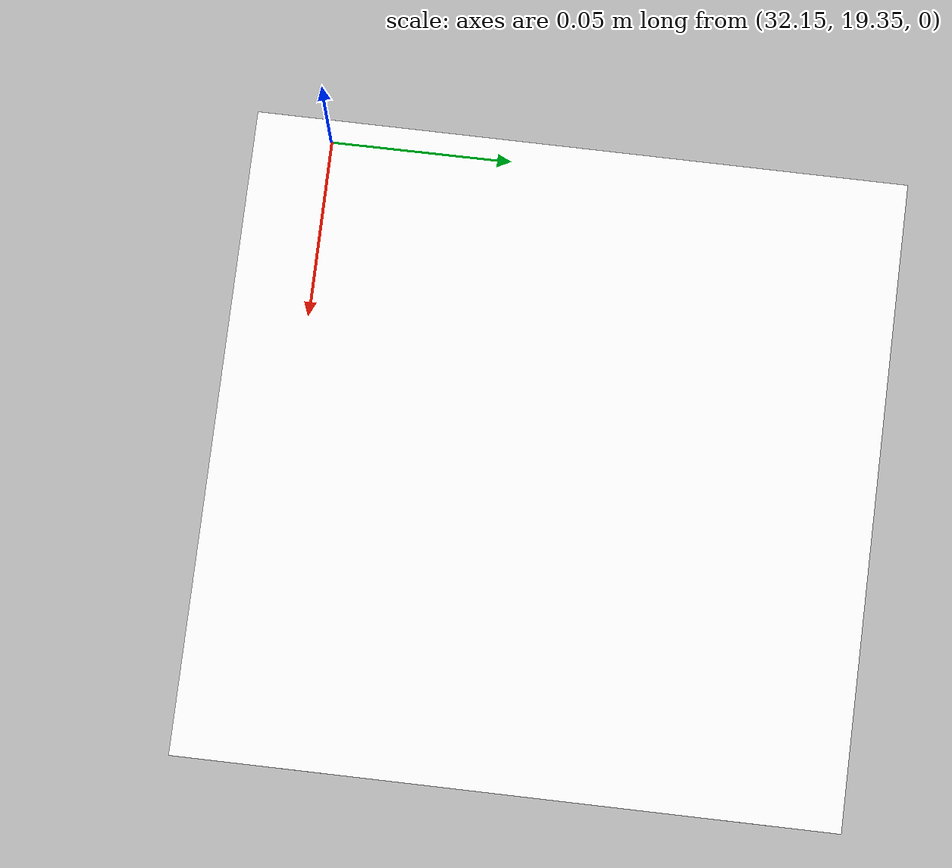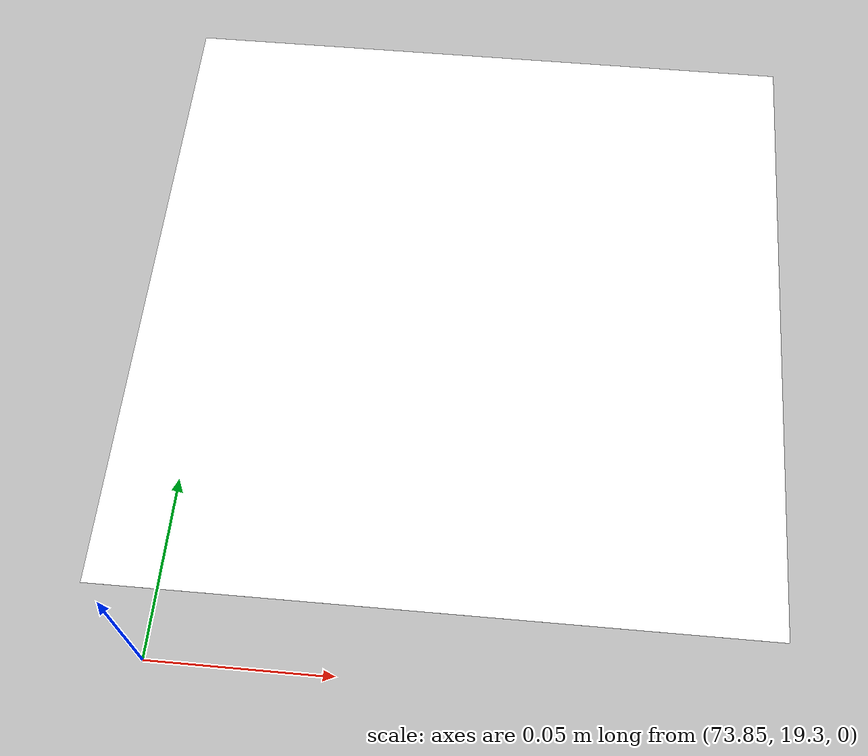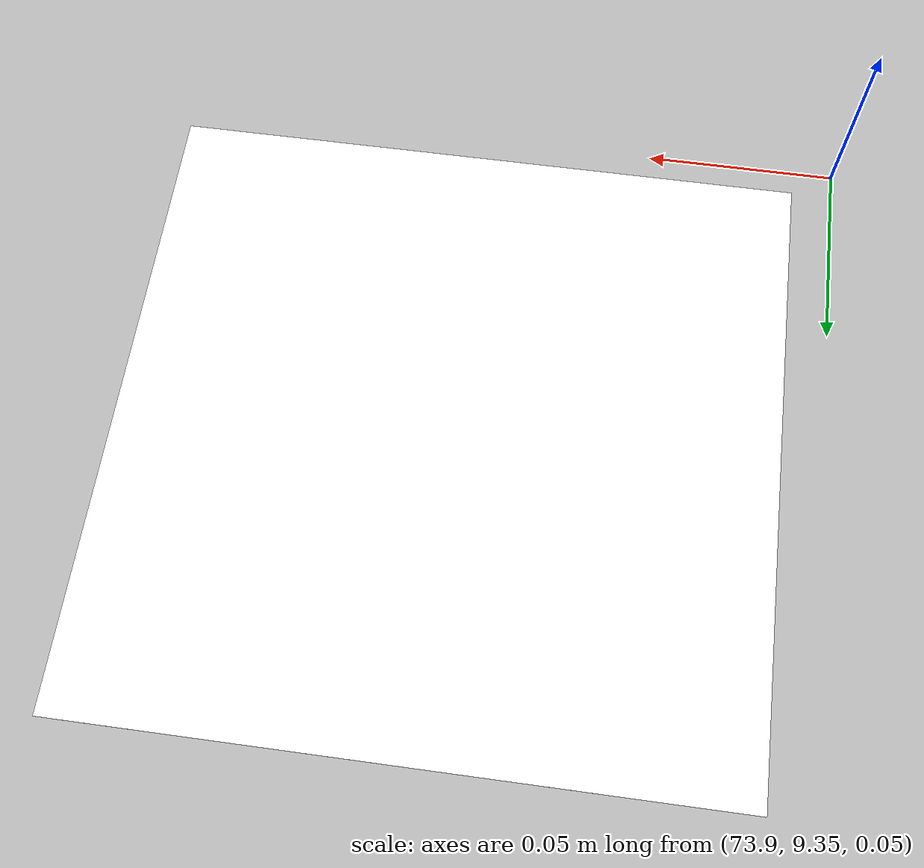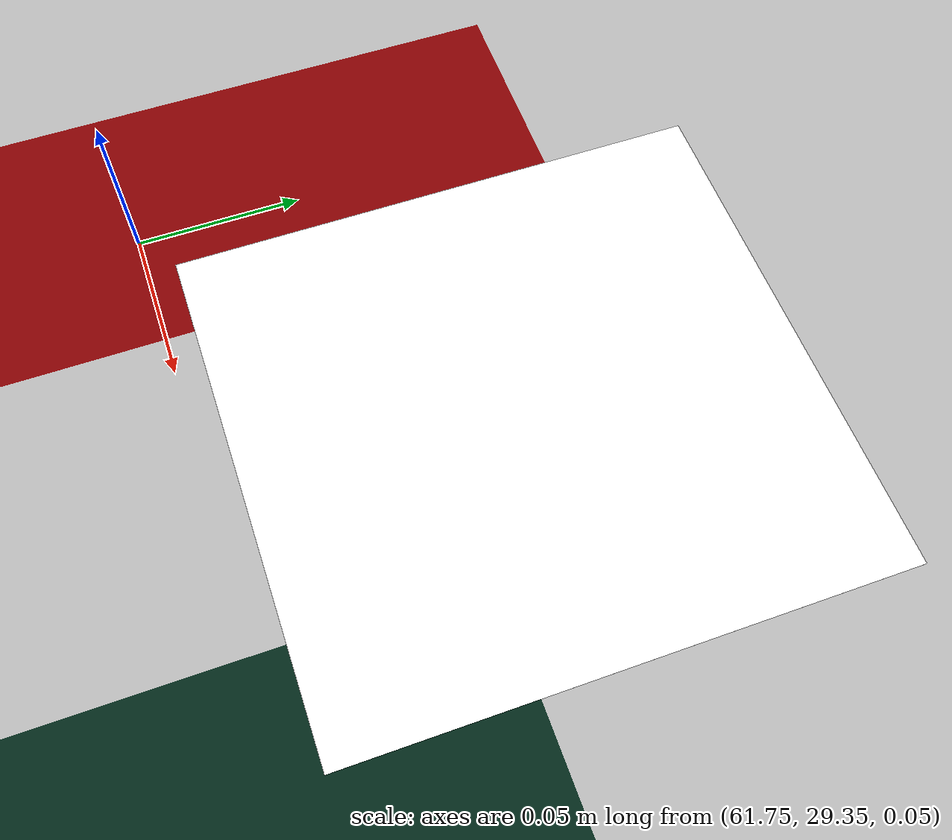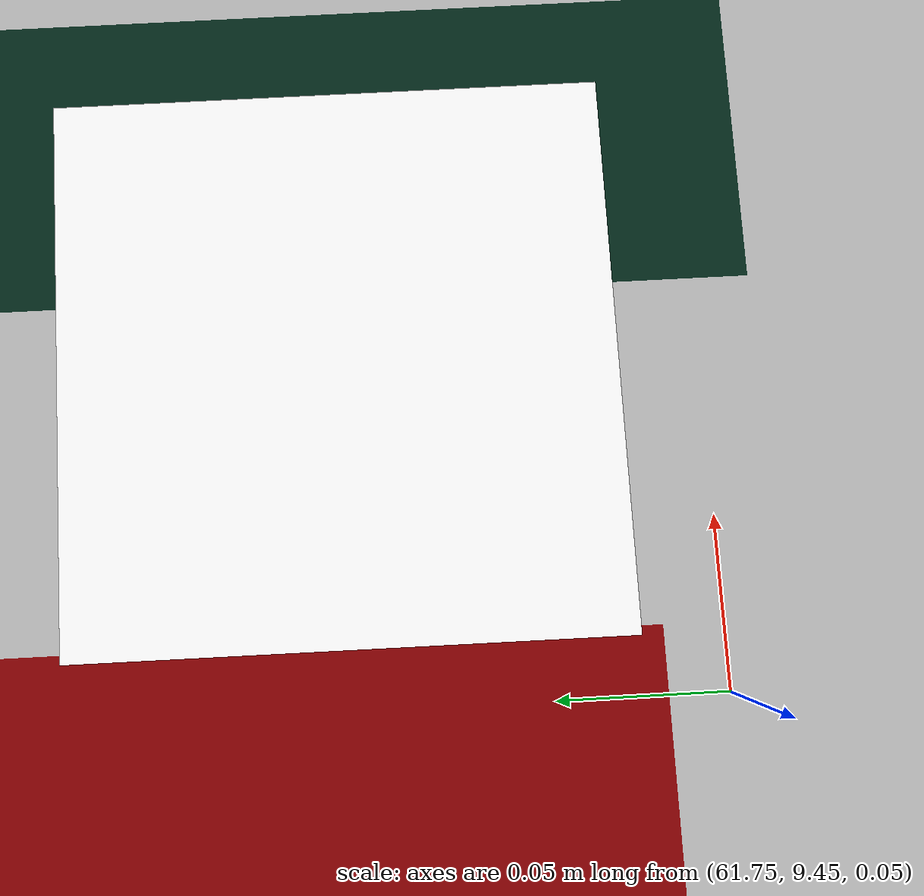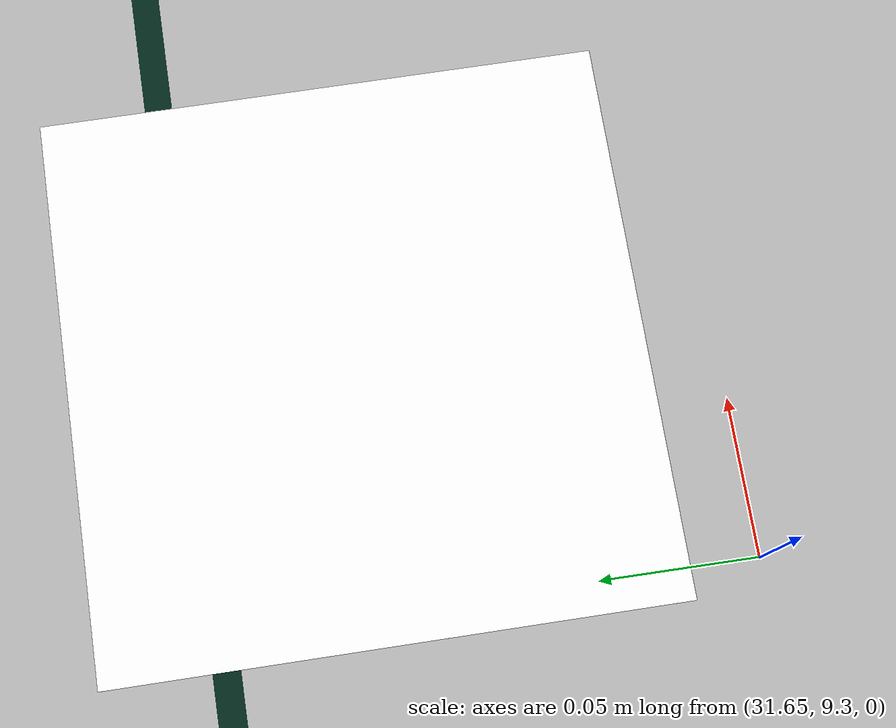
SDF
<sdf version="1.7">
 <world name="factory_ground">
  <gravity>0 0 -9.8</gravity>
  <physics name="default_physics" default="0" type="ode">
   <max_step_size>0.001</max_step_size>
   <real_time_factor>1</real_time_factor>
   <real_time_update_rate>1000</real_time_update_rate>
  </physics>
  <model name="ground_plane">
   <static>1</static>
   <link name="link">
    <collision name="collision">
     <geometry><plane><normal>0 0 1</normal><size>100 100</size></plane></geometry>
     <surface>
      <contact><collide_bitmask>65535</collide_bitmask></contact>
      <friction><ode><mu>100</mu><mu2>50</mu2></ode></friction>
     </surface>
    </collision>
    <visual name="visual">
     <cast_shadows>0</cast_shadows>
     <geometry><plane><normal>0 0 1</normal><size>100 100</size></plane></geometry>
     <material>
      <script><uri>file://media/materials/scripts/gazebo.material</uri><name>Gazebo/Grey</name></script>
     </material>
    </visual>
   </link>
  </model>
  <light name="sun" type="directional">
   <pose>0 0 10 0 -0 0</pose>
   <diffuse>0.8 0.8 0.8 1</diffuse>
   <specular>0.2 0.2 0.2 1</specular>
   <attenuation>
    <range>1000</range>
    <constant>0.9</constant>
    <linear>0.01</linear>
    <quadratic>0.001</quadratic>
   </attenuation>
   <direction>-0.5 0.1 -0.9</direction>
   <spot><inner_angle>0</inner_angle><outer_angle>0</outer_angle><falloff>0</falloff></spot>
  </light>
  <magnetic_field>6e-06 2.3e-05 -4.2e-05</magnetic_field>
  <atmosphere type="adiabatic"/>
  <scene><ambient>0.4 0.4 0.4 1</ambient><background>0.7 0.7 0.7 1</background><shadows>1</shadows></scene>
  <spherical_coordinates>
   <surface_model>EARTH_WGS84</surface_model>
   <latitude_deg>0</latitude_deg>
   <longitude_deg>0</longitude_deg>
   <elevation>0</elevation>
   <heading_deg>0</heading_deg>
  </spherical_coordinates>
  <model name="automobile_factory_Ground">
   <static>0</static>
   <pose>-0.070606 -0.580731 -0 0.000523 -8.6e-05 -0</pose>
   <link name="link">
    <inertial>
     <mass>1000</mass>
     <inertia>
      <ixx>1.20008e+06</ixx>
      <ixy>0</ixy>
      <ixz>0</ixz>
      <iyy>8.33342e+06</iyy>
      <iyz>0</iyz>
      <izz>2.03333e+06</izz>
     </inertia>
    </inertial>
    <collision name="colision">
     <geometry>
      <mesh>
       <uri>model://automobile_factory_Ground/meshes/automobile_factory_Ground.dae</uri>
       <scale>1 1 1</scale>
      </mesh>
     </geometry>
     <surface>
      <friction><ode><mu>100</mu><mu2>50</mu2><fdir1>0 0 0</fdir1><slip1>0</slip1><slip2>0</slip2></ode></friction>
     </surface>
    </collision>
    <visual name="visual">
     <geometry>
      <mesh><uri>model://automobile_factory_Ground/meshes/automobile_factory_Ground.dae</uri></mesh>
     </geometry>
     <meta><layer>1</layer></meta>
    </visual>
   </link>
   <static>1</static>
  </model>
  <model name="marker_1">
   <link name="marker">
    <visual name="visual">
     <geometry><box><size>0.1778 0.1778 1e-05</size></box></geometry>
     <material>
      <script>
       <uri>model://marker_1/materials/scripts</uri>
       <uri>model://marker_1/materials/textures</uri>
       <name>ArucoVisualMarker1/Marker</name>
      </script>
      <ambient>1 1 1 1</ambient>
      <diffuse>1 1 1 1</diffuse>
      <specular>0 0 0 1</specular>
      <emissive>1 1 1 0</emissive>
      <shader type="vertex"><normal_map>__default__</normal_map></shader>
     </material>
    </visual>
    <collision name="collision"><geometry><box><size>0.1 0.1 1e-05</size></box></geometry></collision>
   </link>
   <link name="marker_pad">
    <pose relative_to="marker">0 0 -1e-05 0 -0 0</pose>
    <visual name="visual">
     <geometry><box><size>0.1 0.1 1e-05</size></box></geometry>
     <material>
      <lighting>1</lighting>
      <script><uri>file://media/materials/scripts/gazebo.material</uri><name>Gazebo/White</name></script>
      <ambient>0.3 0.3 0.3 1</ambient>
      <diffuse>0.7 0.7 0.7 1</diffuse>
      <specular>0.01 0.01 0.01 1</specular>
      <emissive>1 1 1 0</emissive>
      <shader type="vertex"><normal_map>__default__</normal_map></shader>
     </material>
    </visual>
    <collision name="collision"><geometry><box><size>0.1 0.1 1e-05</size></box></geometry></collision>
   </link>
   <joint name="marker_JOINT_marker_pad" type="revolute">
    <parent>marker</parent>
    <child>marker_pad</child>
    <axis>
     <xyz>0 0 1</xyz>
     <limit><upper>0</upper><lower>0</lower></limit>
     <dynamics><spring_reference>0</spring_reference><spring_stiffness>0</spring_stiffness></dynamics>
    </axis>
   </joint>
   <static>1</static>
   <pose>31.7283 9.41298 0.012563 0 -0 0</pose>
  </model>
  <model name="marker_2">
   <link name="marker">
    <visual name="visual">
     <geometry><box><size>0.1778 0.1778 1e-05</size></box></geometry>
     <material>
      <script>
       <uri>model://marker_2/materials/scripts</uri>
       <uri>model://marker_2/materials/textures</uri>
       <name>ArucoVisualMarker2/Marker</name>
      </script>
      <ambient>1 1 1 1</ambient>
      <diffuse>1 1 1 1</diffuse>
      <specular>0 0 0 1</specular>
      <emissive>1 1 1 0</emissive>
      <shader type="vertex"><normal_map>__default__</normal_map></shader>
     </material>
    </visual>
    <collision name="collision"><geometry><box><size>0.1 0.1 1e-05</size></box></geometry></collision>
   </link>
   <link name="marker_pad">
    <pose relative_to="marker">0 0 -1e-05 0 -0 0</pose>
    <visual name="visual">
     <geometry><box><size>0.1 0.1 1e-05</size></box></geometry>
     <material>
      <lighting>1</lighting>
      <script><uri>file://media/materials/scripts/gazebo.material</uri><name>Gazebo/White</name></script>
      <ambient>0.3 0.3 0.3 1</ambient>
      <diffuse>0.7 0.7 0.7 1</diffuse>
      <specular>0.01 0.01 0.01 1</specular>
      <emissive>1 1 1 0</emissive>
      <shader type="vertex"><normal_map>__default__</normal_map></shader>
     </material>
    </visual>
    <collision name="collision"><geometry><box><size>0.1 0.1 1e-05</size></box></geometry></collision>
   </link>
   <joint name="marker_JOINT_marker_pad" type="revolute">
    <parent>marker</parent>
    <child>marker_pad</child>
    <axis>
     <xyz>0 0 1</xyz>
     <limit><upper>0</upper><lower>0</lower></limit>
     <dynamics><spring_reference>0</spring_reference><spring_stiffness>0</spring_stiffness></dynamics>
    </axis>
   </joint>
   <static>1</static>
   <pose>32.238 19.4194 0.018031 0 -0 0</pose>
  </model>
  <model name="marker_3">
   <link name="marker">
    <visual name="visual">
     <geometry><box><size>0.1778 0.1778 1e-05</size></box></geometry>
     <material>
      <script>
       <uri>model://marker_3/materials/scripts</uri>
       <uri>model://marker_3/materials/textures</uri>
       <name>ArucoVisualMarker3/Marker</name>
      </script>
      <ambient>1 1 1 1</ambient>
      <diffuse>1 1 1 1</diffuse>
      <specular>0 0 0 1</specular>
      <emissive>1 1 1 0</emissive>
      <shader type="vertex"><normal_map>__default__</normal_map></shader>
     </material>
    </visual>
    <collision name="collision"><geometry><box><size>0.1 0.1 1e-05</size></box></geometry></collision>
   </link>
   <link name="marker_pad">
    <pose relative_to="marker">0 0 -1e-05 0 -0 0</pose>
    <visual name="visual">
     <geometry><box><size>0.1 0.1 1e-05</size></box></geometry>
     <material>
      <lighting>1</lighting>
      <script><uri>file://media/materials/scripts/gazebo.material</uri><name>Gazebo/White</name></script>
      <ambient>0.3 0.3 0.3 1</ambient>
      <diffuse>0.7 0.7 0.7 1</diffuse>
      <specular>0.01 0.01 0.01 1</specular>
      <emissive>1 1 1 0</emissive>
      <shader type="vertex"><normal_map>__default__</normal_map></shader>
     </material>
    </visual>
    <collision name="collision"><geometry><box><size>0.1 0.1 1e-05</size></box></geometry></collision>
   </link>
   <joint name="marker_JOINT_marker_pad" type="revolute">
    <parent>marker</parent>
    <child>marker_pad</child>
    <axis>
     <xyz>0 0 1</xyz>
     <limit><upper>0</upper><lower>0</lower></limit>
     <dynamics><spring_reference>0</spring_reference><spring_stiffness>0</spring_stiffness></dynamics>
    </axis>
   </joint>
   <static>1</static>
   <pose>50.6126 9.39638 0.031715 0 -0 0</pose>
  </model>
  <model name="marker_4">
   <link name="marker">
    <visual name="visual">
     <geometry><box><size>0.1778 0.1778 1e-05</size></box></geometry>
     <material>
      <script>
       <uri>model://marker_4/materials/scripts</uri>
       <uri>model://marker_4/materials/textures</uri>
       <name>ArucoVisualMarker4/Marker</name>
      </script>
      <ambient>1 1 1 1</ambient>
      <diffuse>1 1 1 1</diffuse>
      <specular>0 0 0 1</specular>
      <emissive>1 1 1 0</emissive>
      <shader type="vertex"><normal_map>__default__</normal_map></shader>
     </material>
    </visual>
    <collision name="collision"><geometry><box><size>0.1 0.1 1e-05</size></box></geometry></collision>
   </link>
   <link name="marker_pad">
    <pose relative_to="marker">0 0 -1e-05 0 -0 0</pose>
    <visual name="visual">
     <geometry><box><size>0.1 0.1 1e-05</size></box></geometry>
     <material>
      <lighting>1</lighting>
      <script><uri>file://media/materials/scripts/gazebo.material</uri><name>Gazebo/White</name></script>
      <ambient>0.3 0.3 0.3 1</ambient>
      <diffuse>0.7 0.7 0.7 1</diffuse>
      <specular>0.01 0.01 0.01 1</specular>
      <emissive>1 1 1 0</emissive>
      <shader type="vertex"><normal_map>__default__</normal_map></shader>
     </material>
    </visual>
    <collision name="collision"><geometry><box><size>0.1 0.1 1e-05</size></box></geometry></collision>
   </link>
   <joint name="marker_JOINT_marker_pad" type="revolute">
    <parent>marker</parent>
    <child>marker_pad</child>
    <axis>
     <xyz>0 0 1</xyz>
     <limit><upper>0</upper><lower>0</lower></limit>
     <dynamics><spring_reference>0</spring_reference><spring_stiffness>0</spring_stiffness></dynamics>
    </axis>
   </joint>
   <static>1</static>
   <pose>51.1195 19.4767 0.016567 0 -0 0</pose>
  </model>
  <model name="marker_6">
   <link name="marker">
    <visual name="visual">
     <geometry><box><size>0.1778 0.1778 1e-05</size></box></geometry>
     <material>
      <script>
       <uri>model://marker_6/materials/scripts</uri>
       <uri>model://marker_6/materials/textures</uri>
       <name>ArucoVisualMarker6/Marker</name>
      </script>
      <ambient>1 1 1 1</ambient>
      <diffuse>1 1 1 1</diffuse>
      <specular>0 0 0 1</specular>
      <emissive>1 1 1 0</emissive>
      <shader type="vertex"><normal_map>__default__</normal_map></shader>
     </material>
    </visual>
    <collision name="collision"><geometry><box><size>0.1 0.1 1e-05</size></box></geometry></collision>
   </link>
   <link name="marker_pad">
    <pose relative_to="marker">0 0 -1e-05 0 -0 0</pose>
    <visual name="visual">
     <geometry><box><size>0.1 0.1 1e-05</size></box></geometry>
     <material>
      <lighting>1</lighting>
      <script><uri>file://media/materials/scripts/gazebo.material</uri><name>Gazebo/White</name></script>
      <ambient>0.3 0.3 0.3 1</ambient>
      <diffuse>0.7 0.7 0.7 1</diffuse>
      <specular>0.01 0.01 0.01 1</specular>
      <emissive>1 1 1 0</emissive>
      <shader type="vertex"><normal_map>__default__</normal_map></shader>
     </material>
    </visual>
    <collision name="collision"><geometry><box><size>0.1 0.1 1e-05</size></box></geometry></collision>
   </link>
   <joint name="marker_JOINT_marker_pad" type="revolute">
    <parent>marker</parent>
    <child>marker_pad</child>
    <axis>
     <xyz>0 0 1</xyz>
     <limit><upper>0</upper><lower>0</lower></limit>
     <dynamics><spring_reference>0</spring_reference><spring_stiffness>0</spring_stiffness></dynamics>
    </axis>
   </joint>
   <static>1</static>
   <pose>61.8541 9.55774 0.028296 0 -0 0</pose>
  </model>
  <model name="marker_7">
   <link name="marker">
    <visual name="visual">
     <geometry><box><size>0.1778 0.1778 1e-05</size></box></geometry>
     <material>
      <script>
       <uri>model://marker_7/materials/scripts</uri>
       <uri>model://marker_7/materials/textures</uri>
       <name>ArucoVisualMarker7/Marker</name>
      </script>
      <ambient>1 1 1 1</ambient>
      <diffuse>1 1 1 1</diffuse>
      <specular>0 0 0 1</specular>
      <emissive>1 1 1 0</emissive>
      <shader type="vertex"><normal_map>__default__</normal_map></shader>
     </material>
    </visual>
    <collision name="collision"><geometry><box><size>0.1 0.1 1e-05</size></box></geometry></collision>
   </link>
   <link name="marker_pad">
    <pose relative_to="marker">0 0 -1e-05 0 -0 0</pose>
    <visual name="visual">
     <geometry><box><size>0.1 0.1 1e-05</size></box></geometry>
     <material>
      <lighting>1</lighting>
      <script><uri>file://media/materials/scripts/gazebo.material</uri><name>Gazebo/White</name></script>
      <ambient>0.3 0.3 0.3 1</ambient>
      <diffuse>0.7 0.7 0.7 1</diffuse>
      <specular>0.01 0.01 0.01 1</specular>
      <emissive>1 1 1 0</emissive>
      <shader type="vertex"><normal_map>__default__</normal_map></shader>
     </material>
    </visual>
    <collision name="collision"><geometry><box><size>0.1 0.1 1e-05</size></box></geometry></collision>
   </link>
   <joint name="marker_JOINT_marker_pad" type="revolute">
    <parent>marker</parent>
    <child>marker_pad</child>
    <axis>
     <xyz>0 0 1</xyz>
     <limit><upper>0</upper><lower>0</lower></limit>
     <dynamics><spring_reference>0</spring_reference><spring_stiffness>0</spring_stiffness></dynamics>
    </axis>
   </joint>
   <static>1</static>
   <pose>61.841 19.4853 0.020192 0 -0 0</pose>
  </model>
  <model name="marker_5">
   <link name="marker">
    <visual name="visual">
     <geometry><box><size>0.1778 0.1778 1e-05</size></box></geometry>
     <material>
      <script>
       <uri>model://marker_5/materials/scripts</uri>
       <uri>model://marker_5/materials/textures</uri>
       <name>ArucoVisualMarker5/Marker</name>
      </script>
      <ambient>1 1 1 1</ambient>
      <diffuse>1 1 1 1</diffuse>
      <specular>0 0 0 1</specular>
      <emissive>1 1 1 0</emissive>
      <shader type="vertex"><normal_map>__default__</normal_map></shader>
     </material>
    </visual>
    <collision name="collision"><geometry><box><size>0.1 0.1 1e-05</size></box></geometry></collision>
   </link>
   <link name="marker_pad">
    <pose relative_to="marker">0 0 -1e-05 0 -0 0</pose>
    <visual name="visual">
     <geometry><box><size>0.1 0.1 1e-05</size></box></geometry>
     <material>
      <lighting>1</lighting>
      <script><uri>file://media/materials/scripts/gazebo.material</uri><name>Gazebo/White</name></script>
      <ambient>0.3 0.3 0.3 1</ambient>
      <diffuse>0.7 0.7 0.7 1</diffuse>
      <specular>0.01 0.01 0.01 1</specular>
      <emissive>1 1 1 0</emissive>
      <shader type="vertex"><normal_map>__default__</normal_map></shader>
     </material>
    </visual>
    <collision name="collision"><geometry><box><size>0.1 0.1 1e-05</size></box></geometry></collision>
   </link>
   <joint name="marker_JOINT_marker_pad" type="revolute">
    <parent>marker</parent>
    <child>marker_pad</child>
    <axis>
     <xyz>0 0 1</xyz>
     <limit><upper>0</upper><lower>0</lower></limit>
     <dynamics><spring_reference>0</spring_reference><spring_stiffness>0</spring_stiffness></dynamics>
    </axis>
   </joint>
   <static>1</static>
   <pose>50.3968 29.4438 0.031081 0 -0 0</pose>
  </model>
  <model name="marker_8">
   <link name="marker">
    <visual name="visual">
     <geometry><box><size>0.1778 0.1778 1e-05</size></box></geometry>
     <material>
      <script>
       <uri>model://marker_8/materials/scripts</uri>
       <uri>model://marker_8/materials/textures</uri>
       <name>ArucoVisualMarker8/Marker</name>
      </script>
      <ambient>1 1 1 1</ambient>
      <diffuse>1 1 1 1</diffuse>
      <specular>0 0 0 1</specular>
      <emissive>1 1 1 0</emissive>
      <shader type="vertex"><normal_map>__default__</normal_map></shader>
     </material>
    </visual>
    <collision name="collision"><geometry><box><size>0.1 0.1 1e-05</size></box></geometry></collision>
   </link>
   <link name="marker_pad">
    <pose relative_to="marker">0 0 -1e-05 0 -0 0</pose>
    <visual name="visual">
     <geometry><box><size>0.1 0.1 1e-05</size></box></geometry>
     <material>
      <lighting>1</lighting>
      <script><uri>file://media/materials/scripts/gazebo.material</uri><name>Gazebo/White</name></script>
      <ambient>0.3 0.3 0.3 1</ambient>
      <diffuse>0.7 0.7 0.7 1</diffuse>
      <specular>0.01 0.01 0.01 1</specular>
      <emissive>1 1 1 0</emissive>
      <shader type="vertex"><normal_map>__default__</normal_map></shader>
     </material>
    </visual>
    <collision name="collision"><geometry><box><size>0.1 0.1 1e-05</size></box></geometry></collision>
   </link>
   <joint name="marker_JOINT_marker_pad" type="revolute">
    <parent>marker</parent>
    <child>marker_pad</child>
    <axis>
     <xyz>0 0 1</xyz>
     <limit><upper>0</upper><lower>0</lower></limit>
     <dynamics><spring_reference>0</spring_reference><spring_stiffness>0</spring_stiffness></dynamics>
    </axis>
   </joint>
   <static>1</static>
   <pose>61.8315 29.4468 0.026609 0 -0 0</pose>
  </model>
  <model name="marker_11">
   <link name="marker">
    <visual name="visual">
     <geometry><box><size>0.1778 0.1778 1e-05</size></box></geometry>
     <material>
      <script>
       <uri>model://marker_11/materials/scripts</uri>
       <uri>model://marker_11/materials/textures</uri>
       <name>ArucoVisualMarker11/Marker</name>
      </script>
      <ambient>1 1 1 1</ambient>
      <diffuse>1 1 1 1</diffuse>
      <specular>0 0 0 1</specular>
      <emissive>1 1 1 0</emissive>
      <shader type="vertex"><normal_map>__default__</normal_map></shader>
     </material>
    </visual>
    <collision name="collision"><geometry><box><size>0.1 0.1 1e-05</size></box></geometry></collision>
   </link>
   <link name="marker_pad">
    <pose relative_to="marker">0 0 -1e-05 0 -0 0</pose>
    <visual name="visual">
     <geometry><box><size>0.1 0.1 1e-05</size></box></geometry>
     <material>
      <lighting>1</lighting>
      <script><uri>file://media/materials/scripts/gazebo.material</uri><name>Gazebo/White</name></script>
      <ambient>0.3 0.3 0.3 1</ambient>
      <diffuse>0.7 0.7 0.7 1</diffuse>
      <specular>0.01 0.01 0.01 1</specular>
      <emissive>1 1 1 0</emissive>
      <shader type="vertex"><normal_map>__default__</normal_map></shader>
     </material>
    </visual>
    <collision name="collision"><geometry><box><size>0.1 0.1 1e-05</size></box></geometry></collision>
   </link>
   <joint name="marker_JOINT_marker_pad" type="revolute">
    <parent>marker</parent>
    <child>marker_pad</child>
    <axis>
     <xyz>0 0 1</xyz>
     <limit><upper>0</upper><lower>0</lower></limit>
     <dynamics><spring_reference>0</spring_reference><spring_stiffness>0</spring_stiffness></dynamics>
    </axis>
   </joint>
   <static>1</static>
   <pose>74.0416 29.4043 0.024796 0 -0 0</pose>
  </model>
  <model name="marker_10">
   <link name="marker">
    <visual name="visual">
     <geometry><box><size>0.1778 0.1778 1e-05</size></box></geometry>
     <material>
      <script>
       <uri>model://marker_10/materials/scripts</uri>
       <uri>model://marker_10/materials/textures</uri>
       <name>ArucoVisualMarker10/Marker</name>
      </script>
      <ambient>1 1 1 1</ambient>
      <diffuse>1 1 1 1</diffuse>
      <specular>0 0 0 1</specular>
      <emissive>1 1 1 0</emissive>
      <shader type="vertex"><normal_map>__default__</normal_map></shader>
     </material>
    </visual>
    <collision name="collision"><geometry><box><size>0.1 0.1 1e-05</size></box></geometry></collision>
   </link>
   <link name="marker_pad">
    <pose relative_to="marker">0 0 -1e-05 0 -0 0</pose>
    <visual name="visual">
     <geometry><box><size>0.1 0.1 1e-05</size></box></geometry>
     <material>
      <lighting>1</lighting>
      <script><uri>file://media/materials/scripts/gazebo.material</uri><name>Gazebo/White</name></script>
      <ambient>0.3 0.3 0.3 1</ambient>
      <diffuse>0.7 0.7 0.7 1</diffuse>
      <specular>0.01 0.01 0.01 1</specular>
      <emissive>1 1 1 0</emissive>
      <shader type="vertex"><normal_map>__default__</normal_map></shader>
     </material>
    </visual>
    <collision name="collision"><geometry><box><size>0.1 0.1 1e-05</size></box></geometry></collision>
   </link>
   <joint name="marker_JOINT_marker_pad" type="revolute">
    <parent>marker</parent>
    <child>marker_pad</child>
    <axis>
     <xyz>0 0 1</xyz>
     <limit><upper>0</upper><lower>0</lower></limit>
     <dynamics><spring_reference>0</spring_reference><spring_stiffness>0</spring_stiffness></dynamics>
    </axis>
   </joint>
   <static>1</static>
   <pose>73.9236 19.4027 0.017449 0 -0 0</pose>
  </model>
  <model name="marker_9">
   <link name="marker">
    <visual name="visual">
     <geometry><box><size>0.1778 0.1778 1e-05</size></box></geometry>
     <material>
      <script>
       <uri>model://marker_9/materials/scripts</uri>
       <uri>model://marker_9/materials/textures</uri>
       <name>ArucoVisualMarker9/Marker</name>
      </script>
      <ambient>1 1 1 1</ambient>
      <diffuse>1 1 1 1</diffuse>
      <specular>0 0 0 1</specular>
      <emissive>1 1 1 0</emissive>
      <shader type="vertex"><normal_map>__default__</normal_map></shader>
     </material>
    </visual>
    <collision name="collision"><geometry><box><size>0.1 0.1 1e-05</size></box></geometry></collision>
   </link>
   <link name="marker_pad">
    <pose relative_to="marker">0 0 -1e-05 0 -0 0</pose>
    <visual name="visual">
     <geometry><box><size>0.1 0.1 1e-05</size></box></geometry>
     <material>
      <lighting>1</lighting>
      <script><uri>file://media/materials/scripts/gazebo.material</uri><name>Gazebo/White</name></script>
      <ambient>0.3 0.3 0.3 1</ambient>
      <diffuse>0.7 0.7 0.7 1</diffuse>
      <specular>0.01 0.01 0.01 1</specular>
      <emissive>1 1 1 0</emissive>
      <shader type="vertex"><normal_map>__default__</normal_map></shader>
     </material>
    </visual>
    <collision name="collision"><geometry><box><size>0.1 0.1 1e-05</size></box></geometry></collision>
   </link>
   <joint name="marker_JOINT_marker_pad" type="revolute">
    <parent>marker</parent>
    <child>marker_pad</child>
    <axis>
     <xyz>0 0 1</xyz>
     <limit><upper>0</upper><lower>0</lower></limit>
     <dynamics><spring_reference>0</spring_reference><spring_stiffness>0</spring_stiffness></dynamics>
    </axis>
   </joint>
   <static>1</static>
   <pose>73.996 9.43243 0.032547 0 -0 0</pose>
  </model>
 </world>
</sdf>
